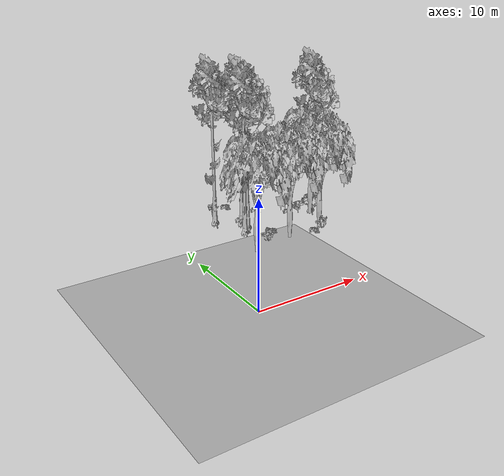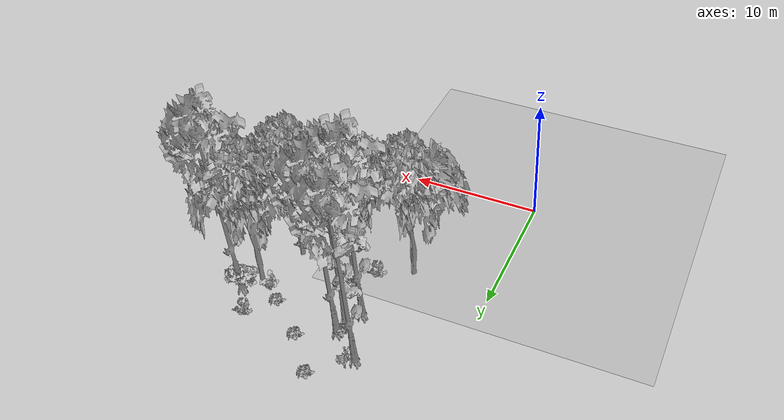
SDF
<sdf version="1.7">
 <world name="default">
  <model name="ground_plane">
   <static>1</static>
   <link name="link">
    <collision name="collision">
     <pose>-50 0 0 0 -0 0</pose>
     <geometry><plane><normal>0 0 1</normal><size>80 80</size></plane></geometry>
     <surface><contact><ode><min_depth>0.01</min_depth><max_vel>0</max_vel></ode></contact></surface>
    </collision>
    <visual name="grass">
     <cast_shadows>0</cast_shadows>
     <geometry>
      <mesh>
       <scale>0.46714285714285714 0.46714285714285714 0.1</scale>
       <uri>file://grass_plane/meshes/grass_plane.dae</uri>
      </mesh>
     </geometry>
    </visual>
   </link>
  </model>
  <model name="Tree 3">
   <static>1</static>
   <pose>15.683032398997803 14.069243496933879 0 1.57079 -0 0</pose>
   <link name="link">
    <collision name="collision">
     <geometry><mesh><scale>3.5 5 3.5</scale><uri>model://tree_2/meshes/tree_2.obj</uri></mesh></geometry>
    </collision>
    <visual name="visual">
     <geometry><mesh><scale>3.5 5 3.5</scale><uri>model://tree_2/meshes/tree_2.obj</uri></mesh></geometry>
    </visual>
   </link>
  </model>
  <model name="Tree 47">
   <static>1</static>
   <pose>7.643115047964308 14.256995909459285 0 1.57079 -0 0</pose>
   <link name="link">
    <collision name="collision">
     <geometry><mesh><scale>3.5 5 3.5</scale><uri>model://tree_9/meshes/tree_9.obj</uri></mesh></geometry>
    </collision>
    <visual name="visual">
     <geometry><mesh><scale>3.5 5 3.5</scale><uri>model://tree_9/meshes/tree_9.obj</uri></mesh></geometry>
    </visual>
   </link>
  </model>
  <model name="Tree 102">
   <static>1</static>
   <pose>5.845482414913015 9.403269401349661 0 1.57079 -0 0</pose>
   <link name="link">
    <collision name="collision">
     <geometry><mesh><scale>3.5 5 3.5</scale><uri>model://tree_2/meshes/tree_2.obj</uri></mesh></geometry>
    </collision>
    <visual name="visual">
     <geometry><mesh><scale>3.5 5 3.5</scale><uri>model://tree_2/meshes/tree_2.obj</uri></mesh></geometry>
    </visual>
   </link>
  </model>
  <model name="Tree 243">
   <static>1</static>
   <pose>6.26074971238527 17.937403667266445 0 1.57079 -0 0</pose>
   <link name="link">
    <collision name="collision">
     <geometry><mesh><scale>3.5 5 3.5</scale><uri>model://tree_9/meshes/tree_9.obj</uri></mesh></geometry>
    </collision>
    <visual name="visual">
     <geometry><mesh><scale>3.5 5 3.5</scale><uri>model://tree_9/meshes/tree_9.obj</uri></mesh></geometry>
    </visual>
   </link>
  </model>
  <model name="Tree 245">
   <static>1</static>
   <pose>16.757556608353788 15.293241281925567 0 1.57079 -0 0</pose>
   <link name="link">
    <collision name="collision">
     <geometry><mesh><scale>3.5 5 3.5</scale><uri>model://tree_9/meshes/tree_9.obj</uri></mesh></geometry>
    </collision>
    <visual name="visual">
     <geometry><mesh><scale>3.5 5 3.5</scale><uri>model://tree_9/meshes/tree_9.obj</uri></mesh></geometry>
    </visual>
   </link>
  </model>
  <model name="Tree 425">
   <static>1</static>
   <pose>14.307083776768785 10.726273867422407 0 1.57079 -0 0</pose>
   <link name="link">
    <collision name="collision">
     <geometry><mesh><scale>3.5 5 3.5</scale><uri>model://tree_2/meshes/tree_2.obj</uri></mesh></geometry>
    </collision>
    <visual name="visual">
     <geometry><mesh><scale>3.5 5 3.5</scale><uri>model://tree_2/meshes/tree_2.obj</uri></mesh></geometry>
    </visual>
   </link>
  </model>
  <model name="Tree 444">
   <static>1</static>
   <pose>10.379608081949378 10.368741869414542 0 1.57079 -0 0</pose>
   <link name="link">
    <collision name="collision">
     <geometry><mesh><scale>3.5 5 3.5</scale><uri>model://tree_2/meshes/tree_2.obj</uri></mesh></geometry>
    </collision>
    <visual name="visual">
     <geometry><mesh><scale>3.5 5 3.5</scale><uri>model://tree_2/meshes/tree_2.obj</uri></mesh></geometry>
    </visual>
   </link>
  </model>
  <model name="Tree 475">
   <static>1</static>
   <pose>8.498598013107646 15.100250075971672 0 1.57079 -0 0</pose>
   <link name="link">
    <collision name="collision">
     <geometry><mesh><scale>3.5 5 3.5</scale><uri>model://tree_9/meshes/tree_9.obj</uri></mesh></geometry>
    </collision>
    <visual name="visual">
     <geometry><mesh><scale>3.5 5 3.5</scale><uri>model://tree_9/meshes/tree_9.obj</uri></mesh></geometry>
    </visual>
   </link>
  </model>
  <model name="Tree 613">
   <static>1</static>
   <pose>8.51529390409096 16.288804550735463 0 1.57079 -0 0</pose>
   <link name="link">
    <collision name="collision">
     <geometry><mesh><scale>3.5 5 3.5</scale><uri>model://tree_9/meshes/tree_9.obj</uri></mesh></geometry>
    </collision>
    <visual name="visual">
     <geometry><mesh><scale>3.5 5 3.5</scale><uri>model://tree_9/meshes/tree_9.obj</uri></mesh></geometry>
    </visual>
   </link>
  </model>
  <model name="Bush 36">
   <static>1</static>
   <pose>14.464336031083974 10.276216321778122 0 1.57079 -0 0</pose>
   <link name="link">
    <collision name="collision">
     <geometry><mesh><scale>2 2 2</scale><uri>model://bush_4/meshes/bush_4.obj</uri></mesh></geometry>
     <surface><contact><collide_without_contact>false</collide_without_contact></contact></surface>
    </collision>
    <visual name="visual">
     <geometry><mesh><scale>2 2 2</scale><uri>model://bush_4/meshes/bush_4.obj</uri></mesh></geometry>
    </visual>
   </link>
  </model>
  <model name="Bush 37">
   <static>1</static>
   <pose>15.136218076429472 17.34449197075695 0 1.57079 -0 0</pose>
   <link name="link">
    <collision name="collision">
     <geometry><mesh><scale>2 2 2</scale><uri>model://bush_4/meshes/bush_4.obj</uri></mesh></geometry>
     <surface><contact><collide_without_contact>false</collide_without_contact></contact></surface>
    </collision>
    <visual name="visual">
     <geometry><mesh><scale>2 2 2</scale><uri>model://bush_4/meshes/bush_4.obj</uri></mesh></geometry>
    </visual>
   </link>
  </model>
  <model name="Bush 49">
   <static>1</static>
   <pose>8.168826797671414 10.70745972764687 0 1.57079 -0 0</pose>
   <link name="link">
    <collision name="collision">
     <geometry><mesh><scale>2 2 2</scale><uri>model://bush_4/meshes/bush_4.obj</uri></mesh></geometry>
     <surface><contact><collide_without_contact>false</collide_without_contact></contact></surface>
    </collision>
    <visual name="visual">
     <geometry><mesh><scale>2 2 2</scale><uri>model://bush_4/meshes/bush_4.obj</uri></mesh></geometry>
    </visual>
   </link>
  </model>
  <model name="Bush 80">
   <static>1</static>
   <pose>17.101106276001502 14.947859432360453 0 1.57079 -0 0</pose>
   <link name="link">
    <collision name="collision">
     <geometry><mesh><scale>2 2 2</scale><uri>model://bush_1/meshes/bush_1.obj</uri></mesh></geometry>
     <surface><contact><collide_without_contact>false</collide_without_contact></contact></surface>
    </collision>
    <visual name="visual">
     <geometry><mesh><scale>2 2 2</scale><uri>model://bush_1/meshes/bush_1.obj</uri></mesh></geometry>
    </visual>
   </link>
  </model>
  <model name="Bush 140">
   <static>1</static>
   <pose>8.253211853367773 16.13473825521737 0 1.57079 -0 0</pose>
   <link name="link">
    <collision name="collision">
     <geometry><mesh><scale>2 2 2</scale><uri>model://bush_2/meshes/bush_2.obj</uri></mesh></geometry>
     <surface><contact><collide_without_contact>false</collide_without_contact></contact></surface>
    </collision>
    <visual name="visual">
     <geometry><mesh><scale>2 2 2</scale><uri>model://bush_2/meshes/bush_2.obj</uri></mesh></geometry>
    </visual>
   </link>
  </model>
  <model name="Bush 250">
   <static>1</static>
   <pose>8.765098807258525 20.063106921299635 0 1.57079 -0 0</pose>
   <link name="link">
    <collision name="collision">
     <geometry><mesh><scale>2 2 2</scale><uri>model://bush_2/meshes/bush_2.obj</uri></mesh></geometry>
     <surface><contact><collide_without_contact>false</collide_without_contact></contact></surface>
    </collision>
    <visual name="visual">
     <geometry><mesh><scale>2 2 2</scale><uri>model://bush_2/meshes/bush_2.obj</uri></mesh></geometry>
    </visual>
   </link>
  </model>
  <model name="Bush 257">
   <static>1</static>
   <pose>11.028850462537221 17.553332870861126 0 1.57079 -0 0</pose>
   <link name="link">
    <collision name="collision">
     <geometry><mesh><scale>2 2 2</scale><uri>model://bush_2/meshes/bush_2.obj</uri></mesh></geometry>
     <surface><contact><collide_without_contact>false</collide_without_contact></contact></surface>
    </collision>
    <visual name="visual">
     <geometry><mesh><scale>2 2 2</scale><uri>model://bush_2/meshes/bush_2.obj</uri></mesh></geometry>
    </visual>
   </link>
  </model>
  <model name="Bush 322">
   <static>1</static>
   <pose>16.33969657421855 14.843108158124146 0 1.57079 -0 0</pose>
   <link name="link">
    <collision name="collision">
     <geometry><mesh><scale>2 2 2</scale><uri>model://bush_1/meshes/bush_1.obj</uri></mesh></geometry>
     <surface><contact><collide_without_contact>false</collide_without_contact></contact></surface>
    </collision>
    <visual name="visual">
     <geometry><mesh><scale>2 2 2</scale><uri>model://bush_1/meshes/bush_1.obj</uri></mesh></geometry>
    </visual>
   </link>
  </model>
  <model name="Bush 374">
   <static>1</static>
   <pose>6.503515810177127 18.85954060312624 0 1.57079 -0 0</pose>
   <link name="link">
    <collision name="collision">
     <geometry><mesh><scale>2 2 2</scale><uri>model://bush_5/meshes/bush_5.obj</uri></mesh></geometry>
     <surface><contact><collide_without_contact>false</collide_without_contact></contact></surface>
    </collision>
    <visual name="visual">
     <geometry><mesh><scale>2 2 2</scale><uri>model://bush_5/meshes/bush_5.obj</uri></mesh></geometry>
    </visual>
   </link>
  </model>
  <model name="Bush 421">
   <static>1</static>
   <pose>13.779099697892612 15.402934632462063 0 1.57079 -0 0</pose>
   <link name="link">
    <collision name="collision">
     <geometry><mesh><scale>2 2 2</scale><uri>model://bush_2/meshes/bush_2.obj</uri></mesh></geometry>
     <surface><contact><collide_without_contact>false</collide_without_contact></contact></surface>
    </collision>
    <visual name="visual">
     <geometry><mesh><scale>2 2 2</scale><uri>model://bush_2/meshes/bush_2.obj</uri></mesh></geometry>
    </visual>
   </link>
  </model>
  <model name="Bush 522">
   <static>1</static>
   <pose>14.698824950375702 14.787835856558274 0 1.57079 -0 0</pose>
   <link name="link">
    <collision name="collision">
     <geometry><mesh><scale>2 2 2</scale><uri>model://bush_0/meshes/bush_0.obj</uri></mesh></geometry>
     <surface><contact><collide_without_contact>false</collide_without_contact></contact></surface>
    </collision>
    <visual name="visual">
     <geometry><mesh><scale>2 2 2</scale><uri>model://bush_0/meshes/bush_0.obj</uri></mesh></geometry>
    </visual>
   </link>
  </model>
  <model name="Bush 614">
   <static>1</static>
   <pose>9.553495434871024 12.167043029425237 0 1.57079 -0 0</pose>
   <link name="link">
    <collision name="collision">
     <geometry><mesh><scale>2 2 2</scale><uri>model://bush_2/meshes/bush_2.obj</uri></mesh></geometry>
     <surface><contact><collide_without_contact>false</collide_without_contact></contact></surface>
    </collision>
    <visual name="visual">
     <geometry><mesh><scale>2 2 2</scale><uri>model://bush_2/meshes/bush_2.obj</uri></mesh></geometry>
    </visual>
   </link>
  </model>
  <model name="Bush 625">
   <static>1</static>
   <pose>13.260424214617103 10.009809183062288 0 1.57079 -0 0</pose>
   <link name="link">
    <collision name="collision">
     <geometry><mesh><scale>2 2 2</scale><uri>model://bush_2/meshes/bush_2.obj</uri></mesh></geometry>
     <surface><contact><collide_without_contact>false</collide_without_contact></contact></surface>
    </collision>
    <visual name="visual">
     <geometry><mesh><scale>2 2 2</scale><uri>model://bush_2/meshes/bush_2.obj</uri></mesh></geometry>
    </visual>
   </link>
  </model>
 </world>
</sdf>
